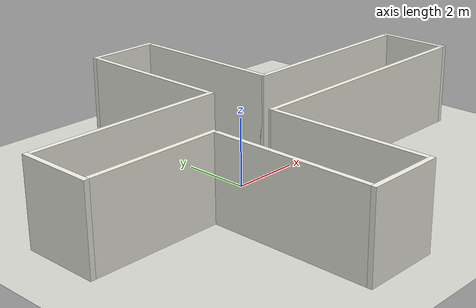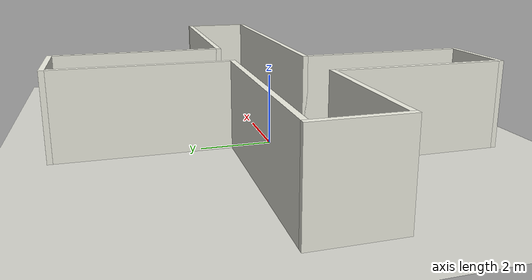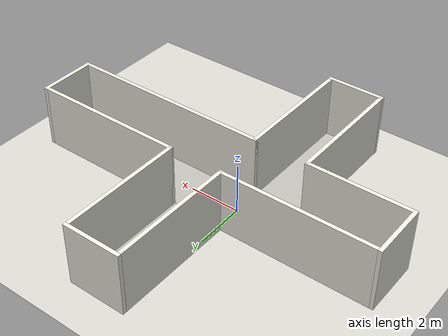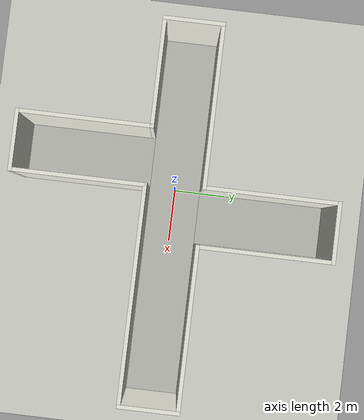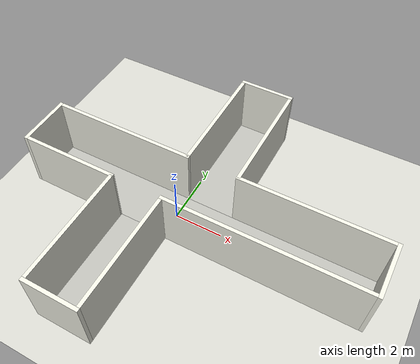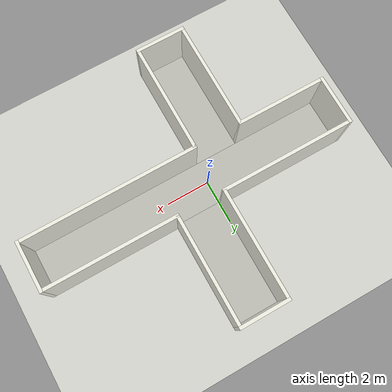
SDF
<?xml version="1.0" ?>
<sdf version="1.8">
  <world name="digital_twin_corridors">

    <!-- Physics -->
    <physics name="1ms" type="ignored">
      <max_step_size>0.001</max_step_size>
      <real_time_factor>1.0</real_time_factor>
    </physics>

    <!-- Plugins -->
    <plugin filename="ignition-gazebo-physics-system" name="ignition::gazebo::systems::Physics"/>
    <plugin filename="ignition-gazebo-user-commands-system" name="ignition::gazebo::systems::UserCommands"/>
    <plugin filename="ignition-gazebo-scene-broadcaster-system" name="ignition::gazebo::systems::SceneBroadcaster"/>
    <plugin filename="ignition-gazebo-sensors-system" name="ignition::gazebo::systems::Sensors">
      <render_engine>ogre2</render_engine>
    </plugin>

    <!-- Lighting -->
    <light type="directional" name="sun">
      <cast_shadows>true</cast_shadows>
      <pose>0 0 10 0 0 0</pose>
      <diffuse>0.9 0.9 0.9 1</diffuse>
      <specular>0.3 0.3 0.3 1</specular>
      <attenuation>
        <range>1000</range>
        <constant>0.9</constant>
        <linear>0.01</linear>
        <quadratic>0.001</quadratic>
      </attenuation>
      <direction>-0.5 0.1 -0.9</direction>
    </light>

    <!-- Ground plane -->
    <model name="ground_plane">
      <static>true</static>
      <link name="link">
        <collision name="collision">
          <geometry>
            <plane>
              <normal>0 0 1</normal>
              <size>100 100</size>
            </plane>
          </geometry>
        </collision>
        <visual name="visual">
          <geometry>
            <plane>
              <normal>0 0 1</normal>
              <size>100 100</size>
            </plane>
          </geometry>
          <material>
            <ambient>0.85 0.85 0.82 1</ambient>
            <diffuse>0.85 0.85 0.82 1</diffuse>
          </material>
        </visual>
      </link>
    </model>

    <!-- ===== MAIN EAST-WEST CORRIDOR ===== -->

    <!-- North wall - west segment (x=-6 to x=0) -->
    <model name="wall_main_north_west">
      <static>true</static>
      <pose>-3 1.075 1.25 0 0 0</pose>
      <link name="link">
        <collision name="collision">
          <geometry><box><size>6.0 0.15 2.5</size></box></geometry>
        </collision>
        <visual name="visual">
          <geometry><box><size>6.0 0.15 2.5</size></box></geometry>
          <material>
            <ambient>0.95 0.95 0.90 1</ambient>
            <diffuse>0.95 0.95 0.90 1</diffuse>
          </material>
        </visual>
      </link>
    </model>

    <!-- North wall - east segment (x=2 to x=8) -->
    <model name="wall_main_north_east">
      <static>true</static>
      <pose>5 1.075 1.25 0 0 0</pose>
      <link name="link">
        <collision name="collision">
          <geometry><box><size>6.0 0.15 2.5</size></box></geometry>
        </collision>
        <visual name="visual">
          <geometry><box><size>6.0 0.15 2.5</size></box></geometry>
          <material>
            <ambient>0.95 0.95 0.90 1</ambient>
            <diffuse>0.95 0.95 0.90 1</diffuse>
          </material>
        </visual>
      </link>
    </model>

    <!-- South wall - west segment (x=-6 to x=-2) -->
    <model name="wall_main_south_west">
      <static>true</static>
      <pose>-4 -1.075 1.25 0 0 0</pose>
      <link name="link">
        <collision name="collision">
          <geometry><box><size>4.0 0.15 2.5</size></box></geometry>
        </collision>
        <visual name="visual">
          <geometry><box><size>4.0 0.15 2.5</size></box></geometry>
          <material>
            <ambient>0.95 0.95 0.90 1</ambient>
            <diffuse>0.95 0.95 0.90 1</diffuse>
          </material>
        </visual>
      </link>
    </model>

    <!-- South wall - east segment (x=0 to x=8) -->
    <model name="wall_main_south_east">
      <static>true</static>
      <pose>4 -1.075 1.25 0 0 0</pose>
      <link name="link">
        <collision name="collision">
          <geometry><box><size>8.0 0.15 2.5</size></box></geometry>
        </collision>
        <visual name="visual">
          <geometry><box><size>8.0 0.15 2.5</size></box></geometry>
          <material>
            <ambient>0.95 0.95 0.90 1</ambient>
            <diffuse>0.95 0.95 0.90 1</diffuse>
          </material>
        </visual>
      </link>
    </model>

    <!-- West end wall -->
    <model name="wall_west_end">
      <static>true</static>
      <pose>-6.075 0 1.25 0 0 0</pose>
      <link name="link">
        <collision name="collision">
          <geometry><box><size>0.15 2.3 2.5</size></box></geometry>
        </collision>
        <visual name="visual">
          <geometry><box><size>0.15 2.3 2.5</size></box></geometry>
          <material>
            <ambient>0.95 0.95 0.90 1</ambient>
            <diffuse>0.95 0.95 0.90 1</diffuse>
          </material>
        </visual>
      </link>
    </model>

    <!-- East end wall -->
    <model name="wall_east_end">
      <static>true</static>
      <pose>8.075 0 1.25 0 0 0</pose>
      <link name="link">
        <collision name="collision">
          <geometry><box><size>0.15 2.3 2.5</size></box></geometry>
        </collision>
        <visual name="visual">
          <geometry><box><size>0.15 2.3 2.5</size></box></geometry>
          <material>
            <ambient>0.95 0.95 0.90 1</ambient>
            <diffuse>0.95 0.95 0.90 1</diffuse>
          </material>
        </visual>
      </link>
    </model>

    <!-- ===== NORTH BRANCH (T-intersection, gap at x=0..2 in north wall) ===== -->

    <!-- West wall of north branch -->
    <model name="wall_north_branch_west">
      <static>true</static>
      <pose>-0.075 3.5 1.25 0 0 0</pose>
      <link name="link">
        <collision name="collision">
          <geometry><box><size>0.15 4.85 2.5</size></box></geometry>
        </collision>
        <visual name="visual">
          <geometry><box><size>0.15 4.85 2.5</size></box></geometry>
          <material>
            <ambient>0.95 0.95 0.90 1</ambient>
            <diffuse>0.95 0.95 0.90 1</diffuse>
          </material>
        </visual>
      </link>
    </model>

    <!-- East wall of north branch -->
    <model name="wall_north_branch_east">
      <static>true</static>
      <pose>2.075 3.5 1.25 0 0 0</pose>
      <link name="link">
        <collision name="collision">
          <geometry><box><size>0.15 4.85 2.5</size></box></geometry>
        </collision>
        <visual name="visual">
          <geometry><box><size>0.15 4.85 2.5</size></box></geometry>
          <material>
            <ambient>0.95 0.95 0.90 1</ambient>
            <diffuse>0.95 0.95 0.90 1</diffuse>
          </material>
        </visual>
      </link>
    </model>

    <!-- North end wall -->
    <model name="wall_north_branch_end">
      <static>true</static>
      <pose>1 6.0 1.25 0 0 0</pose>
      <link name="link">
        <collision name="collision">
          <geometry><box><size>2.3 0.15 2.5</size></box></geometry>
        </collision>
        <visual name="visual">
          <geometry><box><size>2.3 0.15 2.5</size></box></geometry>
          <material>
            <ambient>0.95 0.95 0.90 1</ambient>
            <diffuse>0.95 0.95 0.90 1</diffuse>
          </material>
        </visual>
      </link>
    </model>

    <!-- ===== SOUTH BRANCH (gap at x=-2..0 in south wall) ===== -->

    <!-- West wall of south branch -->
    <model name="wall_south_branch_west">
      <static>true</static>
      <pose>-2.075 -3.5 1.25 0 0 0</pose>
      <link name="link">
        <collision name="collision">
          <geometry><box><size>0.15 4.85 2.5</size></box></geometry>
        </collision>
        <visual name="visual">
          <geometry><box><size>0.15 4.85 2.5</size></box></geometry>
          <material>
            <ambient>0.95 0.95 0.90 1</ambient>
            <diffuse>0.95 0.95 0.90 1</diffuse>
          </material>
        </visual>
      </link>
    </model>

    <!-- East wall of south branch -->
    <model name="wall_south_branch_east">
      <static>true</static>
      <pose>0.075 -3.5 1.25 0 0 0</pose>
      <link name="link">
        <collision name="collision">
          <geometry><box><size>0.15 4.85 2.5</size></box></geometry>
        </collision>
        <visual name="visual">
          <geometry><box><size>0.15 4.85 2.5</size></box></geometry>
          <material>
            <ambient>0.95 0.95 0.90 1</ambient>
            <diffuse>0.95 0.95 0.90 1</diffuse>
          </material>
        </visual>
      </link>
    </model>

    <!-- South end wall -->
    <model name="wall_south_branch_end">
      <static>true</static>
      <pose>-1 -6.0 1.25 0 0 0</pose>
      <link name="link">
        <collision name="collision">
          <geometry><box><size>2.3 0.15 2.5</size></box></geometry>
        </collision>
        <visual name="visual">
          <geometry><box><size>2.3 0.15 2.5</size></box></geometry>
          <material>
            <ambient>0.95 0.95 0.90 1</ambient>
            <diffuse>0.95 0.95 0.90 1</diffuse>
          </material>
        </visual>
      </link>
    </model>

    <!-- ===== CORRIDOR FLOOR (visual only, darker than ground) ===== -->

    <model name="floor_main_corridor">
      <static>true</static>
      <pose>1 0 0.001 0 0 0</pose>
      <link name="link">
        <visual name="visual">
          <geometry><box><size>14.0 2.0 0.001</size></box></geometry>
          <material>
            <ambient>0.75 0.75 0.72 1</ambient>
            <diffuse>0.75 0.75 0.72 1</diffuse>
          </material>
        </visual>
      </link>
    </model>

    <model name="floor_north_branch">
      <static>true</static>
      <pose>1 3.5 0.001 0 0 0</pose>
      <link name="link">
        <visual name="visual">
          <geometry><box><size>2.0 5.0 0.001</size></box></geometry>
          <material>
            <ambient>0.75 0.75 0.72 1</ambient>
            <diffuse>0.75 0.75 0.72 1</diffuse>
          </material>
        </visual>
      </link>
    </model>

    <model name="floor_south_branch">
      <static>true</static>
      <pose>-1 -3.5 0.001 0 0 0</pose>
      <link name="link">
        <visual name="visual">
          <geometry><box><size>2.0 5.0 0.001</size></box></geometry>
          <material>
            <ambient>0.75 0.75 0.72 1</ambient>
            <diffuse>0.75 0.75 0.72 1</diffuse>
          </material>
        </visual>
      </link>
    </model>

  </world>
</sdf>
